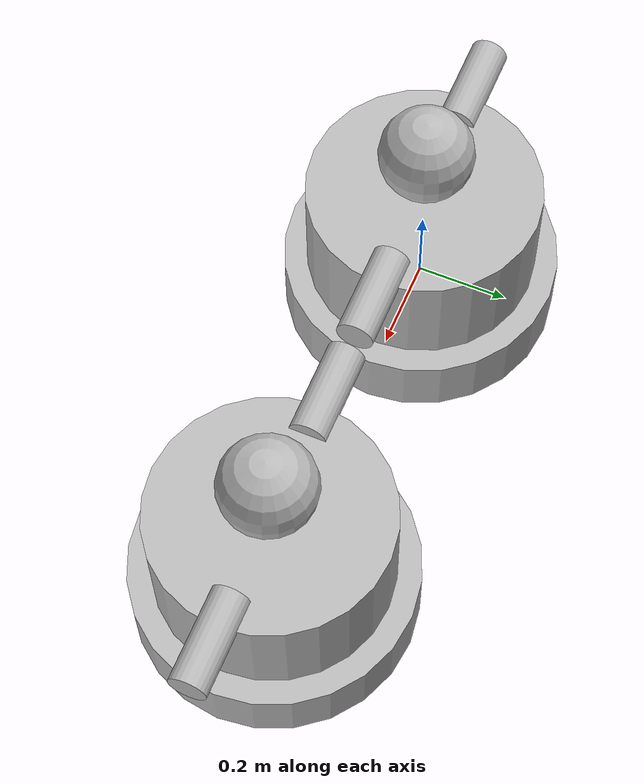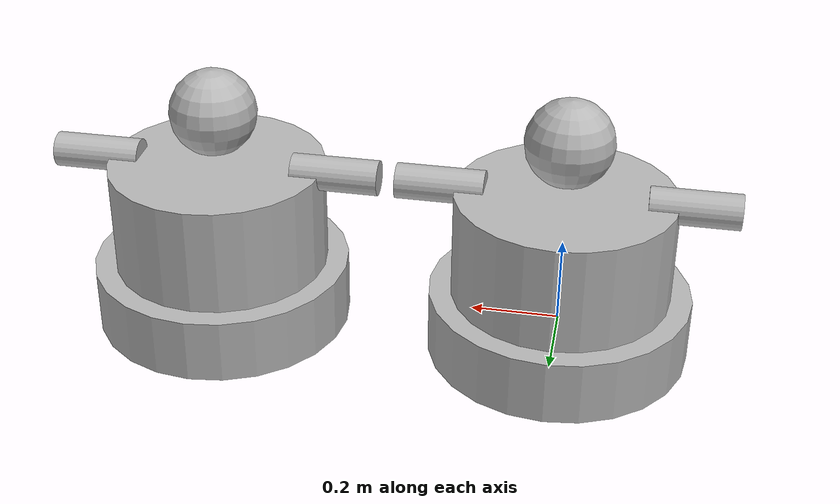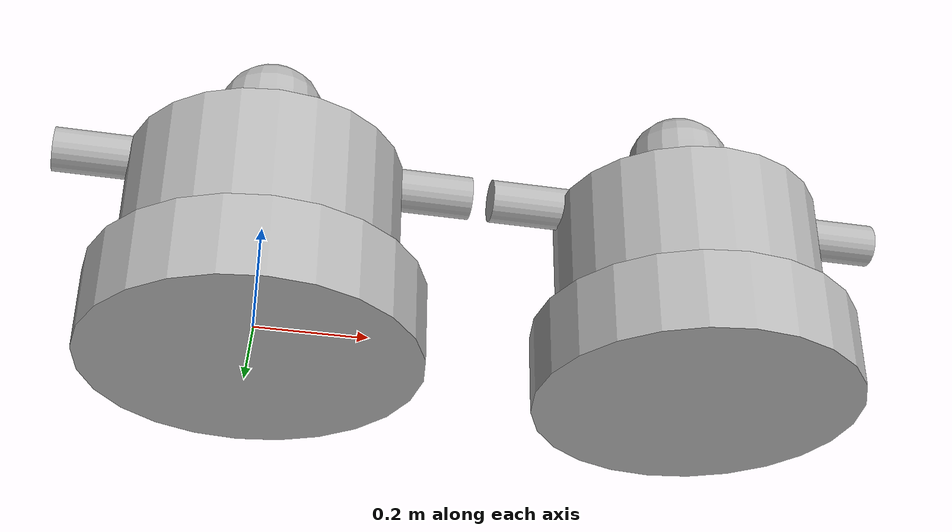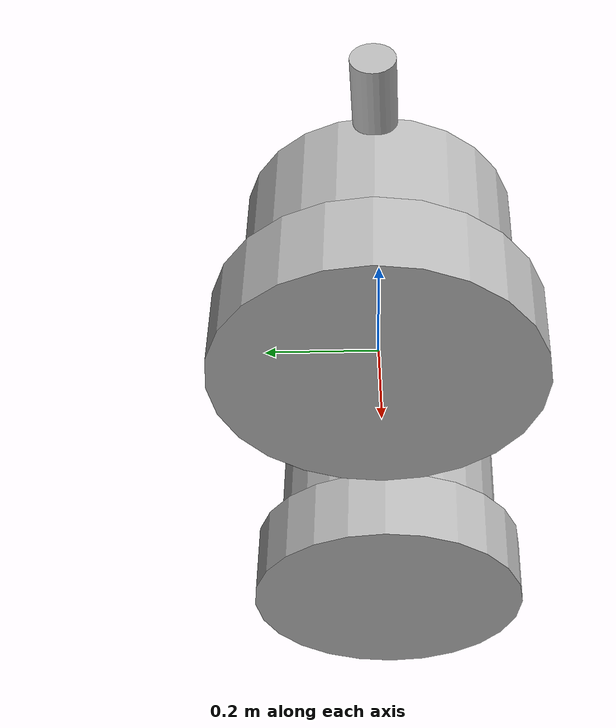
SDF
<sdf version='1.7'>
  <model name='two_robots'>
    <link name='world_link'>
      <inertial>
        <pose>0.4 0 0.140476 0 -0 0</pose>
        <mass>4.2</mass>
        <inertia>
          <ixx>0.144619</ixx>
          <ixy>0</ixy>
          <ixz>0</ixz>
          <iyy>0.816619</iyy>
          <iyz>0</iyz>
          <izz>0.714</izz>
        </inertia>
      </inertial>
      <collision name='world_link_fixed_joint_lump__robot1_base_link_collision'>
        <pose>0 0 0 0 -0 0</pose>
        <geometry>
          <cylinder>
            <length>0.15</length>
            <radius>0.3</radius>
          </cylinder>
        </geometry>
      </collision>
      <collision name='world_link_fixed_joint_lump__robot1_body_link_collision_1'>
        <pose>0 0 0.2 0 -0 0</pose>
        <geometry>
          <cylinder>
            <length>0.25</length>
            <radius>0.25</radius>
          </cylinder>
        </geometry>
      </collision>
      <collision name='world_link_fixed_joint_lump__robot1_head_link_collision_2'>
        <pose>0 0 0.45 0 -0 0</pose>
        <geometry>
          <sphere>
            <radius>0.1</radius>
          </sphere>
        </geometry>
      </collision>
      <collision name='world_link_fixed_joint_lump__robot2_base_link_collision_3'>
        <pose>0.8 0 0 0 -0 0</pose>
        <geometry>
          <cylinder>
            <length>0.15</length>
            <radius>0.3</radius>
          </cylinder>
        </geometry>
      </collision>
      <collision name='world_link_fixed_joint_lump__robot2_body_link_collision_4'>
        <pose>0.8 0 0.2 0 -0 0</pose>
        <geometry>
          <cylinder>
            <length>0.25</length>
            <radius>0.25</radius>
          </cylinder>
        </geometry>
      </collision>
      <collision name='world_link_fixed_joint_lump__robot2_head_link_collision_5'>
        <pose>0.8 0 0.45 0 -0 0</pose>
        <geometry>
          <sphere>
            <radius>0.1</radius>
          </sphere>
        </geometry>
      </collision>
      <visual name='world_link_fixed_joint_lump__robot1_base_link_visual'>
        <pose>0 0 0 0 -0 0</pose>
        <geometry>
          <cylinder>
            <length>0.15</length>
            <radius>0.3</radius>
          </cylinder>
        </geometry>
      </visual>
      <visual name='world_link_fixed_joint_lump__robot1_body_link_visual_1'>
        <pose>0 0 0.2 0 -0 0</pose>
        <geometry>
          <cylinder>
            <length>0.25</length>
            <radius>0.25</radius>
          </cylinder>
        </geometry>
      </visual>
      <visual name='world_link_fixed_joint_lump__robot1_head_link_visual_2'>
        <pose>0 0 0.45 0 -0 0</pose>
        <geometry>
          <sphere>
            <radius>0.1</radius>
          </sphere>
        </geometry>
      </visual>
      <visual name='world_link_fixed_joint_lump__robot2_base_link_visual_3'>
        <pose>0.8 0 0 0 -0 0</pose>
        <geometry>
          <cylinder>
            <length>0.15</length>
            <radius>0.3</radius>
          </cylinder>
        </geometry>
      </visual>
      <visual name='world_link_fixed_joint_lump__robot2_body_link_visual_4'>
        <pose>0.8 0 0.2 0 -0 0</pose>
        <geometry>
          <cylinder>
            <length>0.25</length>
            <radius>0.25</radius>
          </cylinder>
        </geometry>
      </visual>
      <visual name='world_link_fixed_joint_lump__robot2_head_link_visual_5'>
        <pose>0.8 0 0.45 0 -0 0</pose>
        <geometry>
          <sphere>
            <radius>0.1</radius>
          </sphere>
        </geometry>
      </visual>
    </link>
    <joint name='robot1_joint_left_arm' type='revolute'>
      <pose relative_to='world_link'>0.28 0 0.32 0 -0 0</pose>
      <parent>world_link</parent>
      <child>robot1_left_arm</child>
      <axis>
        <xyz>0 1 0</xyz>
        <limit>
          <lower>-1.57</lower>
          <upper>1.57</upper>
          <effort>10</effort>
          <velocity>1</velocity>
        </limit>
        <dynamics>
          <spring_reference>0</spring_reference>
          <spring_stiffness>0</spring_stiffness>
        </dynamics>
      </axis>
    </joint>
    <link name='robot1_left_arm'>
      <pose relative_to='robot1_joint_left_arm'>0 0 0 0 -0 0</pose>
      <inertial>
        <pose>0 0 0 0 -0 0</pose>
        <mass>0.15</mass>
        <inertia>
          <ixx>0.001</ixx>
          <ixy>0</ixy>
          <ixz>0</ixz>
          <iyy>0.001</iyy>
          <iyz>0</iyz>
          <izz>0.001</izz>
        </inertia>
      </inertial>
      <collision name='robot1_left_arm_collision'>
        <pose>0 0 0 0 1.5708 0</pose>
        <geometry>
          <cylinder>
            <length>0.2</length>
            <radius>0.04</radius>
          </cylinder>
        </geometry>
      </collision>
      <visual name='robot1_left_arm_visual'>
        <pose>0 0 0 0 1.5708 0</pose>
        <geometry>
          <cylinder>
            <length>0.2</length>
            <radius>0.04</radius>
          </cylinder>
        </geometry>
      </visual>
    </link>
    <joint name='robot1_joint_right_arm' type='revolute'>
      <pose relative_to='world_link'>-0.28 0 0.32 0 -0 0</pose>
      <parent>world_link</parent>
      <child>robot1_right_arm</child>
      <axis>
        <xyz>0 1 0</xyz>
        <limit>
          <lower>-1.57</lower>
          <upper>1.57</upper>
          <effort>10</effort>
          <velocity>1</velocity>
        </limit>
        <dynamics>
          <spring_reference>0</spring_reference>
          <spring_stiffness>0</spring_stiffness>
        </dynamics>
      </axis>
    </joint>
    <link name='robot1_right_arm'>
      <pose relative_to='robot1_joint_right_arm'>0 0 0 0 -0 0</pose>
      <inertial>
        <pose>0 0 0 0 -0 0</pose>
        <mass>0.15</mass>
        <inertia>
          <ixx>0.001</ixx>
          <ixy>0</ixy>
          <ixz>0</ixz>
          <iyy>0.001</iyy>
          <iyz>0</iyz>
          <izz>0.001</izz>
        </inertia>
      </inertial>
      <collision name='robot1_right_arm_collision'>
        <pose>0 0 0 0 1.5708 0</pose>
        <geometry>
          <cylinder>
            <length>0.2</length>
            <radius>0.04</radius>
          </cylinder>
        </geometry>
      </collision>
      <visual name='robot1_right_arm_visual'>
        <pose>0 0 0 0 1.5708 0</pose>
        <geometry>
          <cylinder>
            <length>0.2</length>
            <radius>0.04</radius>
          </cylinder>
        </geometry>
      </visual>
    </link>
    <joint name='robot2_joint_left_arm' type='revolute'>
      <pose relative_to='world_link'>1.08 0 0.32 0 -0 0</pose>
      <parent>world_link</parent>
      <child>robot2_left_arm</child>
      <axis>
        <xyz>0 1 0</xyz>
        <limit>
          <lower>-1.57</lower>
          <upper>1.57</upper>
          <effort>10</effort>
          <velocity>1</velocity>
        </limit>
        <dynamics>
          <spring_reference>0</spring_reference>
          <spring_stiffness>0</spring_stiffness>
        </dynamics>
      </axis>
    </joint>
    <link name='robot2_left_arm'>
      <pose relative_to='robot2_joint_left_arm'>0 0 0 0 -0 0</pose>
      <inertial>
        <pose>0 0 0 0 -0 0</pose>
        <mass>0.15</mass>
        <inertia>
          <ixx>0.001</ixx>
          <ixy>0</ixy>
          <ixz>0</ixz>
          <iyy>0.001</iyy>
          <iyz>0</iyz>
          <izz>0.001</izz>
        </inertia>
      </inertial>
      <collision name='robot2_left_arm_collision'>
        <pose>0 0 0 0 1.5708 0</pose>
        <geometry>
          <cylinder>
            <length>0.2</length>
            <radius>0.04</radius>
          </cylinder>
        </geometry>
      </collision>
      <visual name='robot2_left_arm_visual'>
        <pose>0 0 0 0 1.5708 0</pose>
        <geometry>
          <cylinder>
            <length>0.2</length>
            <radius>0.04</radius>
          </cylinder>
        </geometry>
      </visual>
    </link>
    <joint name='robot2_joint_right_arm' type='revolute'>
      <pose relative_to='world_link'>0.52 0 0.32 0 -0 0</pose>
      <parent>world_link</parent>
      <child>robot2_right_arm</child>
      <axis>
        <xyz>0 1 0</xyz>
        <limit>
          <lower>-1.57</lower>
          <upper>1.57</upper>
          <effort>10</effort>
          <velocity>1</velocity>
        </limit>
        <dynamics>
          <spring_reference>0</spring_reference>
          <spring_stiffness>0</spring_stiffness>
        </dynamics>
      </axis>
    </joint>
    <link name='robot2_right_arm'>
      <pose relative_to='robot2_joint_right_arm'>0 0 0 0 -0 0</pose>
      <inertial>
        <pose>0 0 0 0 -0 0</pose>
        <mass>0.15</mass>
        <inertia>
          <ixx>0.001</ixx>
          <ixy>0</ixy>
          <ixz>0</ixz>
          <iyy>0.001</iyy>
          <iyz>0</iyz>
          <izz>0.001</izz>
        </inertia>
      </inertial>
      <collision name='robot2_right_arm_collision'>
        <pose>0 0 0 0 1.5708 0</pose>
        <geometry>
          <cylinder>
            <length>0.2</length>
            <radius>0.04</radius>
          </cylinder>
        </geometry>
      </collision>
      <visual name='robot2_right_arm_visual'>
        <pose>0 0 0 0 1.5708 0</pose>
        <geometry>
          <cylinder>
            <length>0.2</length>
            <radius>0.04</radius>
          </cylinder>
        </geometry>
      </visual>
    </link>
  </model>
</sdf>
